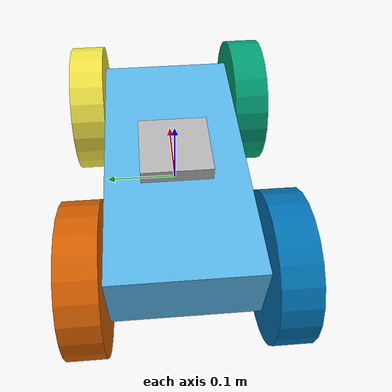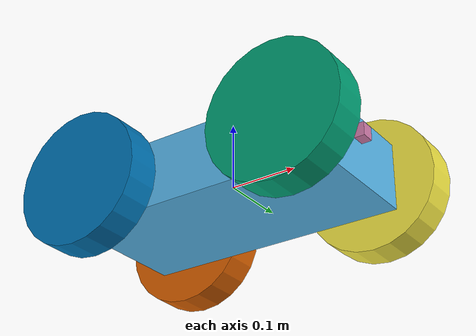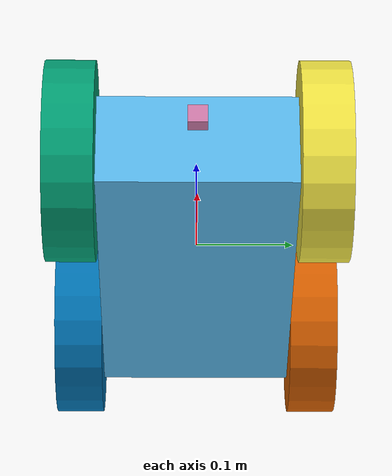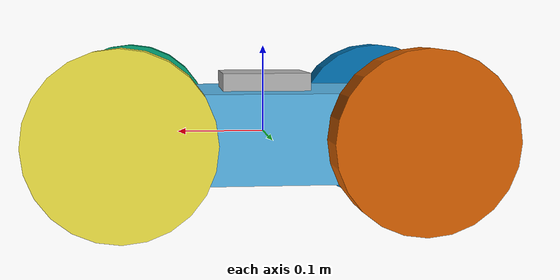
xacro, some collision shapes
<?xml version='1.0'?>

<robot name="my_robot" xmlns:xacro="http://www.ros.org/wiki/xacro">
  <xacro:property name="chassis_width" value="0.2" />
  <xacro:property name="chassis_length" value="0.45" />
  <xacro:property name="chassis_height" value="0.02" />

  <xacro:property name="wheel_length" value="0.045" />
  <xacro:property name="wheel_separation" value="0.32" />
  <xacro:property name="wheel_y_offset" value="${(chassis_width + wheel_length + 0.005)/2}" />

  <xacro:property name="camera_width" value="0.02" />
  <xacro:property name="camera_length" value="0.02" />
  <xacro:property name="camera_height" value="0.02" />
  <xacro:property name="camera_mass" value="0.02" />

  <xacro:macro name="wheel" params="fb lr translateX translateY">
    <link name="${fb}_${lr}_wheel">
      <visual>
        <origin xyz="0 0 0" rpy=" 0 1.5707 1.5707"/>
        <geometry>
          <cylinder radius="0.1" length="0.05" />
        </geometry>
      </visual>

      <collision>
        <origin xyz="0 0 0" rpy=" 0 1.5707 1.5707"/>
        <geometry>
          <cylinder radius="0.1" length="0.05" />
        </geometry>
      </collision>

      <inertial>
        <mass value="5"/>
        <origin xyz="0.0 0 0" rpy=" 0 1.5707 1.5707"/>
        <inertia
            ixx="0.1" ixy="0" ixz="0"
            iyy="0.1" iyz="0"
            izz="0.1"
        />
      </inertial>
    </link>

    <joint type="continuous" name="${fb}_${lr}_hinge">
      <origin xyz="${translateX} ${translateY} 0" rpy="0 0 0"/>
      <child link="${fb}_${lr}_wheel"/>
      <parent link="chassis"/>
      <axis xyz="0 1 0" rpy="0 0 0"/>
      <limit effort="100" velocity="100"/>
      <dynamics damping="1.0" friction="1.0"/>
    </joint>
  </xacro:macro>

  <link name="robot_footprint"></link>

  <joint name="robot_footprint_joint" type="fixed">
    <origin xyz="0 0 0" rpy="0 0 0" />
    <parent link="robot_footprint"/>
    <child link="chassis" />
  </joint>

  <link name='chassis'>
    <pose>0 0 0.1 0 0 0</pose>

    <inertial>
      <mass value="15.0"/>
      <origin xyz="0.0 0 0" rpy=" 0 0 0"/>
      <inertia
          ixx="0.1" ixy="0" ixz="0"
          iyy="0.1" iyz="0"
          izz="0.1"
      />
    </inertial>

    <collision name='collision'>
      <origin xyz="0 0 0" rpy=" 0 0 0"/>
      <geometry>
        <box size=".4 .2 .1"/>
      </geometry>
    </collision>

    <visual name='chassis_visual'>
      <origin xyz="0 0 0" rpy=" 0 0 0"/>
      <geometry>
        <box size=".4 .2 .1"/>
      </geometry>
    </visual>

  </link>

  <xacro:wheel fb="front" lr="right" translateX="${wheel_separation/2}" translateY="-${wheel_y_offset}" />
  <xacro:wheel fb="front" lr="left" translateX="${wheel_separation/2}" translateY="${wheel_y_offset}" />

  <xacro:wheel fb="back" lr="right" translateX="-${wheel_separation/2}" translateY="-${wheel_y_offset}" />
  <xacro:wheel fb="back" lr="left" translateX="-${wheel_separation/2}" translateY="${wheel_y_offset}" />

  <!-- camera -->
  <link name="camera">
    <inertial>
      <mass value="${camera_mass}"/>
      <origin xyz="0 0 0" rpy="0 0 0"/>
      <inertia ixx="1e-6" ixy="0" ixz="0" iyy="1e-6" iyz="0" izz="1e-6"/>
    </inertial>
    <collision>
      <origin xyz="0 0 0" rpy="0 0 0"/>
      <geometry>
        <box size="${camera_length} ${camera_width} ${camera_height}"/>
      </geometry>
    </collision>
    <visual>
      <origin xyz="0 0 0" rpy="0 0 0"/>
      <geometry>
        <box size="${camera_length} ${camera_width} ${camera_height}"/>
      </geometry>
    </visual>
  </link>

  <joint type="fixed" name="camera_joint">
    <origin xyz="${chassis_length/2 - camera_length} 0 ${chassis_height/2 + camera_height/2}" rpy="0 0 0"/>
    <child link="camera"/>
    <parent link="chassis"/>
    <axis xyz="0 1 0" rpy="0 0 0"/>
  </joint>

  <!-- lidar -->
  <link name="hokuyo">
    <inertial>
      <mass value="1e-5"/>
      <origin xyz="0 0 0" rpy="0 0 0"/>
      <inertia ixx="1e-6" ixy="0" ixz="0" iyy="1e-6" iyz="0" izz="1e-6"/>
    </inertial>
    <collision>
      <origin xyz="0 0 0" rpy="0 0 0"/>
      <geometry>
        <box size=".1 .1 .1"/>
      </geometry>
    </collision>
    <visual>
      <origin xyz="0 0 0" rpy="0 0 0"/>
      <geometry>
        <mesh filename="package://my_robot/meshes/hokuyo.dae"/>
      </geometry>
    </visual>
  </link>

  <joint type="fixed" name="hokuyo_joint">
    <origin xyz="0 0 .02" rpy="0 0 0"/>
    <child link="hokuyo"/>
    <parent link="chassis"/>
    <axis xyz="0 1 0" rpy="0 0 0"/>
  </joint>
</robot>
